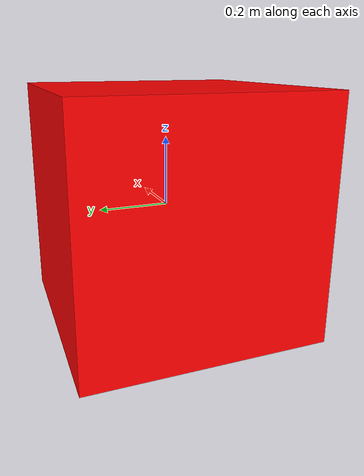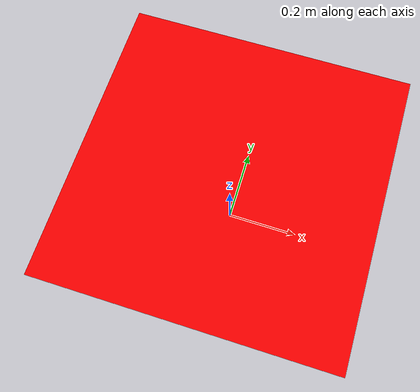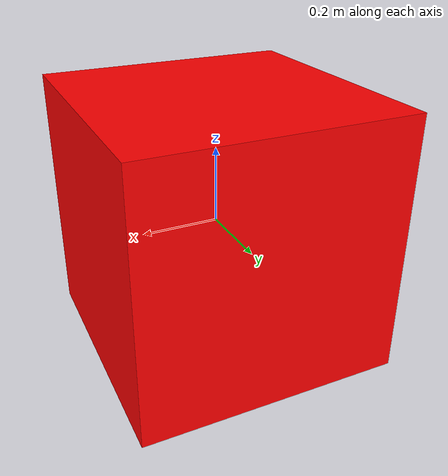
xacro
<?xml version="1.0"?>
<robot xmlns:xacro="http://wiki.ros.org/xacro" name="block1">
  <link name="block1">
    <visual>
      <geometry>
        <mesh filename="/home/utente/my_ws/src/ur5lego/blocks_description/meshes/cubo.dae"/>
      </geometry>
      <material name="Red">
        <color rgba="1.0 0.0 0.0 1.0"/>
      </material>
    </visual>
    <collision>
      <geometry>
        <mesh filename="/home/utente/my_ws/src/ur5lego/blocks_description/meshes/cubo.dae"/>
      </geometry>
    </collision>
    <inertial>
      <mass value="3.7"/>
      <origin rpy="0 0 0" xyz="0.0 0.0 0.0"/>
      <inertia ixx="0.010267495893" ixy="0.0" ixz="0.0" iyy="0.010267495893" iyz="0.0" izz="0.00666"/>
    </inertial>
  </link>
</robot>
